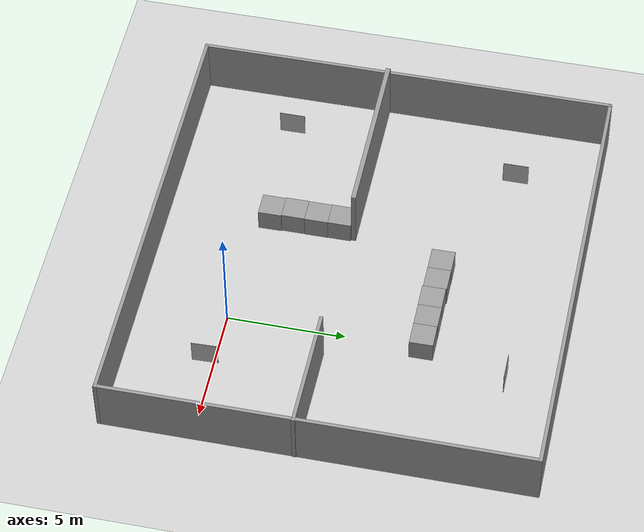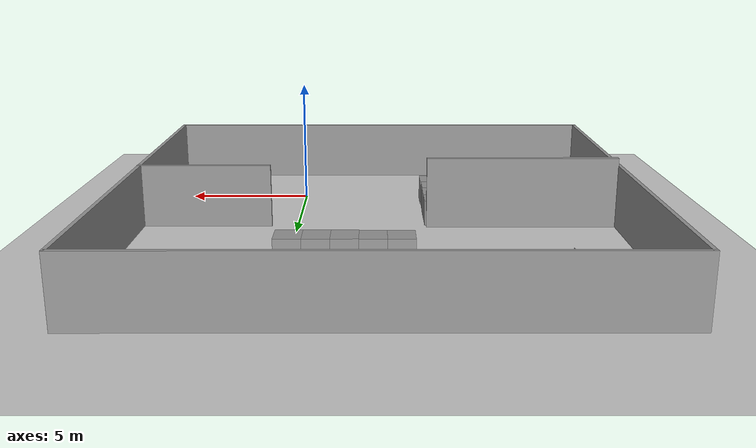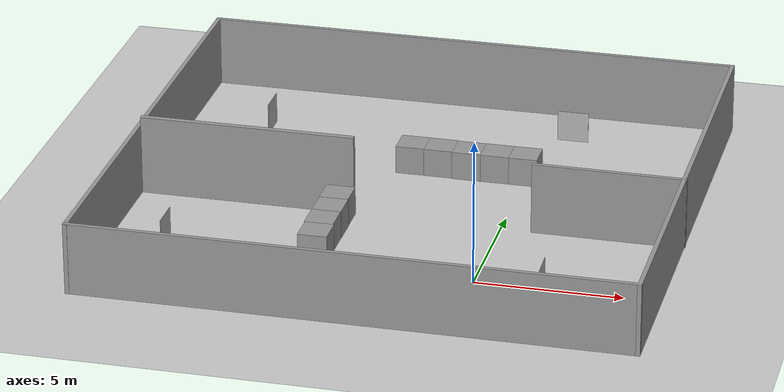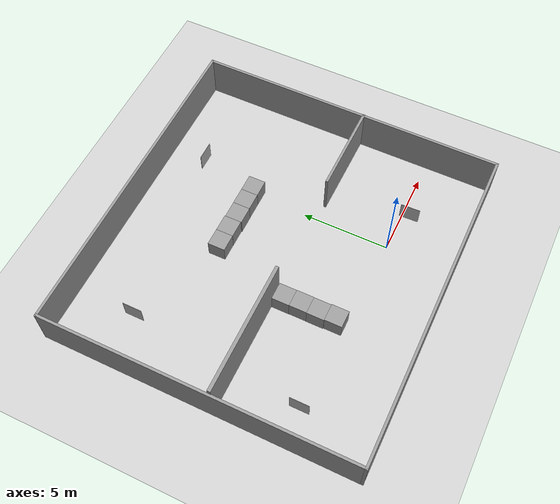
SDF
<sdf version="1.7">
 <world name="default">
  <light name="sun" type="directional">
   <pose>0 0 10 0 -0 0</pose>
   <diffuse>0.8 0.8 0.8 1</diffuse>
   <specular>0.2 0.2 0.2 1</specular>
   <attenuation>
    <range>1000</range>
    <constant>0.9</constant>
    <linear>0.01</linear>
    <quadratic>0.001</quadratic>
   </attenuation>
   <direction>-0.5 0.1 -0.9</direction>
   <spot><inner_angle>0</inner_angle><outer_angle>0</outer_angle><falloff>0</falloff></spot>
  </light>
  <model name="ground_plane">
   <static>1</static>
   <link name="link">
    <collision name="collision">
     <geometry><plane><normal>0 0 1</normal><size>100 100</size></plane></geometry>
     <surface>
      <contact><collide_bitmask>65535</collide_bitmask></contact>
      <friction><ode><mu>100</mu><mu2>50</mu2></ode></friction>
     </surface>
    </collision>
    <visual name="visual">
     <cast_shadows>0</cast_shadows>
     <geometry><plane><normal>0 0 1</normal><size>100 100</size></plane></geometry>
     <material>
      <script><uri>file://media/materials/scripts/gazebo.material</uri><name>Gazebo/Grey</name></script>
     </material>
    </visual>
   </link>
  </model>
  <gravity>0 0 -9.8</gravity>
  <magnetic_field>6e-06 2.3e-05 -4.2e-05</magnetic_field>
  <atmosphere type="adiabatic"/>
  <physics type="ode">
   <max_step_size>0.001</max_step_size>
   <real_time_factor>1</real_time_factor>
   <real_time_update_rate>1000</real_time_update_rate>
  </physics>
  <scene><ambient>0.4 0.4 0.4 1</ambient><background>0.7 0.7 0.7 1</background><shadows>1</shadows></scene>
  <spherical_coordinates>
   <surface_model>EARTH_WGS84</surface_model>
   <latitude_deg>0</latitude_deg>
   <longitude_deg>0</longitude_deg>
   <elevation>0</elevation>
   <heading_deg>0</heading_deg>
  </spherical_coordinates>
  <model name="Untitled">
   <pose>-314.756 -1223.99 0 0 -0 0</pose>
   <link name="Wall_13">
    <collision name="Wall_13_Collision">
     <geometry><box><size>19 0.15 2.5</size></box></geometry>
     <pose>0 0 1.25 0 -0 0</pose>
    </collision>
    <visual name="Wall_13_Visual">
     <pose>0 0 1.25 0 -0 0</pose>
     <geometry><box><size>19 0.15 2.5</size></box></geometry>
     <material>
      <script><uri>file://media/materials/scripts/gazebo.material</uri><name>Gazebo/Grey</name></script>
      <ambient>1 1 1 1</ambient>
     </material>
     <meta><layer>0</layer></meta>
    </visual>
    <pose>311.508 1220.16 0 0 -0 3.14159</pose>
   </link>
   <link name="Wall_14">
    <collision name="Wall_14_Collision">
     <geometry><box><size>18 0.15 2.5</size></box></geometry>
     <pose>0 0 1.25 0 -0 0</pose>
    </collision>
    <visual name="Wall_14_Visual">
     <pose>0 0 1.25 0 -0 0</pose>
     <geometry><box><size>18 0.15 2.5</size></box></geometry>
     <material>
      <script><uri>file://media/materials/scripts/gazebo.material</uri><name>Gazebo/Grey</name></script>
      <ambient>1 1 1 1</ambient>
     </material>
     <meta><layer>0</layer></meta>
    </visual>
    <pose>302.083 1229.08 0 0 -0 1.5708</pose>
   </link>
   <link name="Wall_19">
    <collision name="Wall_19_Collision">
     <geometry><box><size>19 0.15 2.5</size></box></geometry>
     <pose>0 0 1.25 0 -0 0</pose>
    </collision>
    <visual name="Wall_19_Visual">
     <pose>0 0 1.25 0 -0 0</pose>
     <geometry><box><size>19 0.15 2.5</size></box></geometry>
     <material>
      <script><uri>file://media/materials/scripts/gazebo.material</uri><name>Gazebo/Grey</name></script>
      <ambient>1 1 1 1</ambient>
     </material>
     <meta><layer>0</layer></meta>
    </visual>
    <pose>311.508 1238.01 0 0 -0 0</pose>
   </link>
   <link name="Wall_20">
    <collision name="Wall_20_Collision">
     <geometry><box><size>18 0.15 2.5</size></box></geometry>
     <pose>0 0 1.25 0 -0 0</pose>
    </collision>
    <visual name="Wall_20_Visual">
     <pose>0 0 1.25 0 -0 0</pose>
     <geometry><box><size>18 0.15 2.5</size></box></geometry>
     <material>
      <script><uri>file://media/materials/scripts/gazebo.material</uri><name>Gazebo/Grey</name></script>
      <ambient>1 1 1 1</ambient>
     </material>
     <meta><layer>0</layer></meta>
    </visual>
    <pose>320.933 1229.08 0 0 -0 -1.5708</pose>
   </link>
   <link name="Wall_6">
    <collision name="Wall_6_Collision">
     <geometry><box><size>534.75 0.15 2.5</size></box></geometry>
     <pose>0 0 1.25 0 -0 0</pose>
    </collision>
    <visual name="Wall_6_Visual">
     <pose>0 0 1.25 0 -0 0</pose>
     <geometry><box><size>534.75 0.15 2.5</size></box></geometry>
     <material>
      <script><uri>file://media/materials/scripts/gazebo.material</uri><name>Gazebo/Grey</name></script>
      <ambient>1 1 1 1</ambient>
     </material>
     <meta><layer>0</layer></meta>
    </visual>
    <pose>-131.892 -1048.97 0 0 -0 -0.785398</pose>
   </link>
   <static>1</static>
  </model>
  <model name="aruco-marker-ID=15">
   <static>1</static>
   <link name="link">
    <visual name="visual">
     <geometry>
      <mesh><uri>model://aruco-marker-id=15/meshes/aruco-marker-ID=15.dae</uri><scale>2.2 2.2 2.2</scale></mesh>
     </geometry>
    </visual>
   </link>
   <pose>2.34667 -0.378544 0 0 0 -3.10985</pose>
  </model>
  <model name="aruco-marker-ID=16">
   <static>1</static>
   <link name="link">
    <visual name="visual">
     <geometry>
      <mesh><uri>model://aruco-marker-id=16/meshes/aruco-marker-ID=16.dae</uri><scale>2.2 2.2 2.2</scale></mesh>
     </geometry>
    </visual>
   </link>
   <pose>0.920106 11.8401 0 0 0 -1.56746</pose>
  </model>
  <model name="grey_wall">
   <static>1</static>
   <link name="link">
    <pose>0 0 1.4 0 -0 0</pose>
    <collision name="collision"><geometry><box><size>7.5 0.2 2.8</size></box></geometry></collision>
    <visual name="visual">
     <cast_shadows>0</cast_shadows>
     <geometry><box><size>7.5 0.2 2.8</size></box></geometry>
     <material>
      <script>
       <uri>model://grey_wall/materials/scripts</uri>
       <uri>model://grey_wall/materials/textures</uri>
       <name>vrc/grey_wall</name>
      </script>
     </material>
    </visual>
   </link>
   <pose>-8.86302 4.28438 0 0 -0 0</pose>
  </model>
  <model name="aruco-marker-ID=17">
   <static>1</static>
   <link name="link">
    <visual name="visual">
     <geometry>
      <mesh><uri>model://aruco-marker-id=17/meshes/aruco-marker-ID=17.dae</uri><scale>2.2 2.2 2.2</scale></mesh>
     </geometry>
    </visual>
   </link>
   <pose>-9.70539 10.4736 0 0 -0 0</pose>
  </model>
  <model name="aruco-marker-ID=18">
   <static>1</static>
   <link name="link">
    <visual name="visual">
     <geometry>
      <mesh><uri>model://aruco-marker-id=18/meshes/aruco-marker-ID=18.dae</uri><scale>2.2 2.2 2.2</scale></mesh>
     </geometry>
    </visual>
   </link>
   <pose>-10.6389 0.432213 0 0 -0 0</pose>
  </model>
  <model name="Untitled_0">
   <pose>5.77834 3.40949 0 0 0 -1.57622</pose>
   <link name="Wall_0">
    <collision name="Wall_0_Collision">
     <geometry><box><size>0.16 0.15 2.5</size></box></geometry>
     <pose>0 0 1.25 0 -0 0</pose>
    </collision>
    <visual name="Wall_0_Visual">
     <pose>0 0 1.25 0 -0 0</pose>
     <geometry><box><size>0.16 0.15 2.5</size></box></geometry>
     <material>
      <script><uri>file://media/materials/scripts/gazebo.material</uri><name>Gazebo/Grey</name></script>
      <ambient>1 1 1 1</ambient>
     </material>
     <meta><layer>0</layer></meta>
    </visual>
    <pose>-0.8025 0.4175 0 0 -0 0</pose>
   </link>
   <link name="Wall_1">
    <collision name="Wall_1_Collision">
     <geometry><box><size>5.25 0.15 2.5</size></box></geometry>
     <pose>0 0 1.25 0 -0 0</pose>
    </collision>
    <visual name="Wall_1_Visual">
     <pose>0 0 1.25 0 -0 0</pose>
     <geometry><box><size>5.25 0.15 2.5</size></box></geometry>
     <material>
      <script><uri>file://media/materials/scripts/gazebo.material</uri><name>Gazebo/Grey</name></script>
      <ambient>1 1 1 1</ambient>
     </material>
     <meta><layer>0</layer></meta>
    </visual>
    <pose>-0.7975 -2.1325 0 0 -0 -1.5708</pose>
   </link>
   <static>1</static>
  </model>
  <model name="unit_box_3">
   <pose>-5.5534 3.67665 0.499995 0 -1e-05 0.000739</pose>
   <link name="link">
    <inertial>
     <mass>1</mass>
     <inertia>
      <ixx>0.166667</ixx>
      <ixy>0</ixy>
      <ixz>0</ixz>
      <iyy>0.166667</iyy>
      <iyz>0</iyz>
      <izz>0.166667</izz>
     </inertia>
    </inertial>
    <collision name="collision"><geometry><box><size>1 1 1</size></box></geometry></collision>
    <visual name="visual">
     <geometry><box><size>1 1 1</size></box></geometry>
     <material>
      <script><name>Gazebo/Grey</name><uri>file://media/materials/scripts/gazebo.material</uri></script>
     </material>
    </visual>
   </link>
  </model>
  <model name="unit_box_4">
   <pose>-5.5416 2.67659 0.499995 -1e-05 -0 0.00089</pose>
   <link name="link">
    <inertial>
     <mass>1</mass>
     <inertia>
      <ixx>0.166667</ixx>
      <ixy>0</ixy>
      <ixz>0</ixz>
      <iyy>0.166667</iyy>
      <iyz>0</iyz>
      <izz>0.166667</izz>
     </inertia>
    </inertial>
    <collision name="collision"><geometry><box><size>1 1 1</size></box></geometry></collision>
    <visual name="visual">
     <geometry><box><size>1 1 1</size></box></geometry>
     <material>
      <script><name>Gazebo/Grey</name><uri>file://media/materials/scripts/gazebo.material</uri></script>
     </material>
    </visual>
   </link>
  </model>
  <model name="unit_box_5">
   <pose>-5.54885 1.6763 0.499995 0 -1e-05 0.001205</pose>
   <link name="link">
    <inertial>
     <mass>1</mass>
     <inertia>
      <ixx>0.166667</ixx>
      <ixy>0</ixy>
      <ixz>0</ixz>
      <iyy>0.166667</iyy>
      <iyz>0</iyz>
      <izz>0.166667</izz>
     </inertia>
    </inertial>
    <collision name="collision"><geometry><box><size>1 1 1</size></box></geometry></collision>
    <visual name="visual">
     <geometry><box><size>1 1 1</size></box></geometry>
     <material>
      <script><name>Gazebo/Grey</name><uri>file://media/materials/scripts/gazebo.material</uri></script>
     </material>
    </visual>
   </link>
  </model>
  <model name="unit_box_6">
   <pose>-5.51438 0.676315 0.5 0 -0 0.001262</pose>
   <link name="link">
    <inertial>
     <mass>1</mass>
     <inertia>
      <ixx>0.166667</ixx>
      <ixy>0</ixy>
      <ixz>0</ixz>
      <iyy>0.166667</iyy>
      <iyz>0</iyz>
      <izz>0.166667</izz>
     </inertia>
    </inertial>
    <collision name="collision"><geometry><box><size>1 1 1</size></box></geometry></collision>
    <visual name="visual">
     <geometry><box><size>1 1 1</size></box></geometry>
     <material>
      <script><name>Gazebo/Grey</name><uri>file://media/materials/scripts/gazebo.material</uri></script>
     </material>
    </visual>
   </link>
  </model>
  <model name="unit_box">
   <pose>-0.027221 8.24184 0.499995 -1e-05 -0 0.003492</pose>
   <link name="link">
    <inertial>
     <mass>1</mass>
     <inertia>
      <ixx>0.166667</ixx>
      <ixy>0</ixy>
      <ixz>0</ixz>
      <iyy>0.166667</iyy>
      <iyz>0</iyz>
      <izz>0.166667</izz>
     </inertia>
    </inertial>
    <collision name="collision"><geometry><box><size>1 1 1</size></box></geometry></collision>
    <visual name="visual">
     <geometry><box><size>1 1 1</size></box></geometry>
     <material>
      <script><name>Gazebo/Grey</name><uri>file://media/materials/scripts/gazebo.material</uri></script>
     </material>
    </visual>
   </link>
  </model>
  <model name="unit_box_0">
   <pose>-1.0274 8.24103 0.499995 0 -1e-05 0.003635</pose>
   <link name="link">
    <inertial>
     <mass>1</mass>
     <inertia>
      <ixx>0.166667</ixx>
      <ixy>0</ixy>
      <ixz>0</ixz>
      <iyy>0.166667</iyy>
      <iyz>0</iyz>
      <izz>0.166667</izz>
     </inertia>
    </inertial>
    <collision name="collision"><geometry><box><size>1 1 1</size></box></geometry></collision>
    <visual name="visual">
     <geometry><box><size>1 1 1</size></box></geometry>
     <material>
      <script><name>Gazebo/Grey</name><uri>file://media/materials/scripts/gazebo.material</uri></script>
     </material>
    </visual>
   </link>
  </model>
  <model name="unit_box_1">
   <pose>-2.02745 8.23222 0.499995 -1e-05 -0 0.003708</pose>
   <link name="link">
    <inertial>
     <mass>1</mass>
     <inertia>
      <ixx>0.166667</ixx>
      <ixy>0</ixy>
      <ixz>0</ixz>
      <iyy>0.166667</iyy>
      <iyz>0</iyz>
      <izz>0.166667</izz>
     </inertia>
    </inertial>
    <collision name="collision"><geometry><box><size>1 1 1</size></box></geometry></collision>
    <visual name="visual">
     <geometry><box><size>1 1 1</size></box></geometry>
     <material>
      <script><name>Gazebo/Grey</name><uri>file://media/materials/scripts/gazebo.material</uri></script>
     </material>
    </visual>
   </link>
  </model>
  <model name="unit_box_2">
   <pose>-3.02773 8.26516 0.499995 -0 1e-05 0.0036</pose>
   <link name="link">
    <inertial>
     <mass>1</mass>
     <inertia>
      <ixx>0.166667</ixx>
      <ixy>0</ixy>
      <ixz>0</ixz>
      <iyy>0.166667</iyy>
      <iyz>0</iyz>
      <izz>0.166667</izz>
     </inertia>
    </inertial>
    <collision name="collision"><geometry><box><size>1 1 1</size></box></geometry></collision>
    <visual name="visual">
     <geometry><box><size>1 1 1</size></box></geometry>
     <material>
      <script><name>Gazebo/Grey</name><uri>file://media/materials/scripts/gazebo.material</uri></script>
     </material>
    </visual>
   </link>
  </model>
  <model name="unit_box_7">
   <pose>-4.02775 8.26633 0.499995 0 -1e-05 0.003596</pose>
   <link name="link">
    <inertial>
     <mass>1</mass>
     <inertia>
      <ixx>0.166667</ixx>
      <ixy>0</ixy>
      <ixz>0</ixz>
      <iyy>0.166667</iyy>
      <iyz>0</iyz>
      <izz>0.166667</izz>
     </inertia>
    </inertial>
    <collision name="collision"><geometry><box><size>1 1 1</size></box></geometry></collision>
    <visual name="visual">
     <geometry><box><size>1 1 1</size></box></geometry>
     <material>
      <script><name>Gazebo/Grey</name><uri>file://media/materials/scripts/gazebo.material</uri></script>
     </material>
    </visual>
   </link>
  </model>
 </world>
</sdf>
